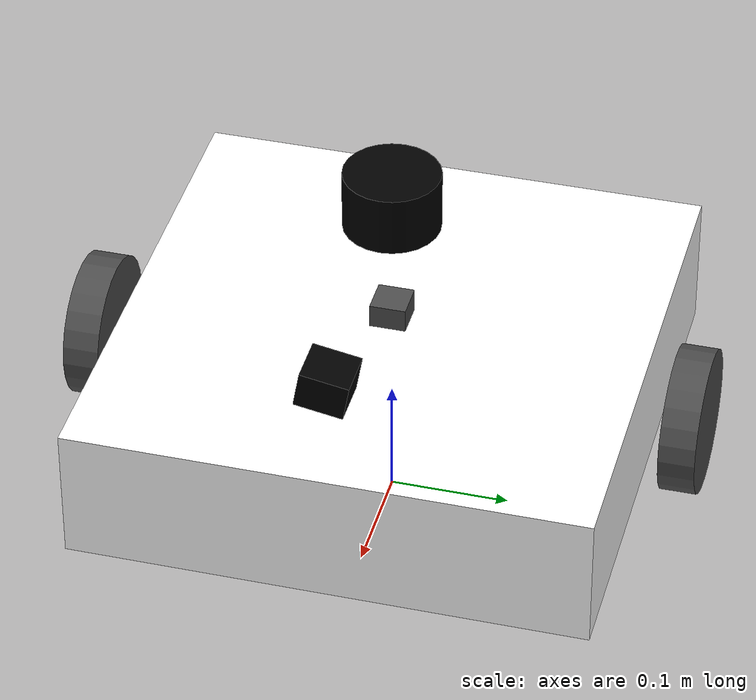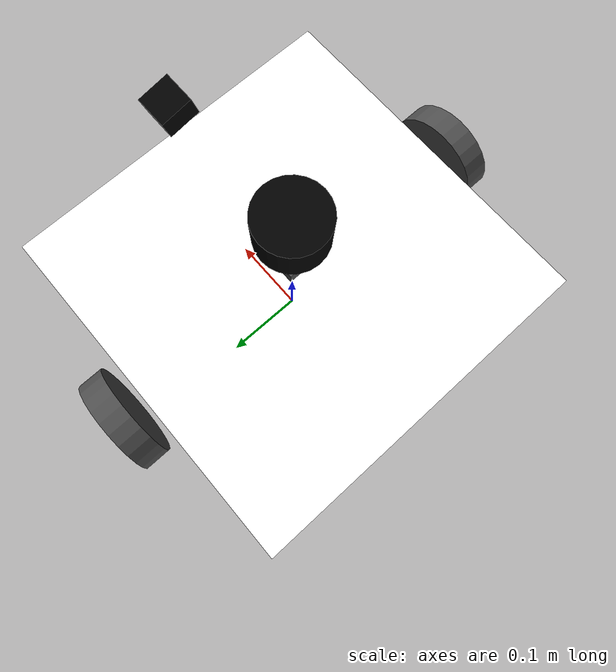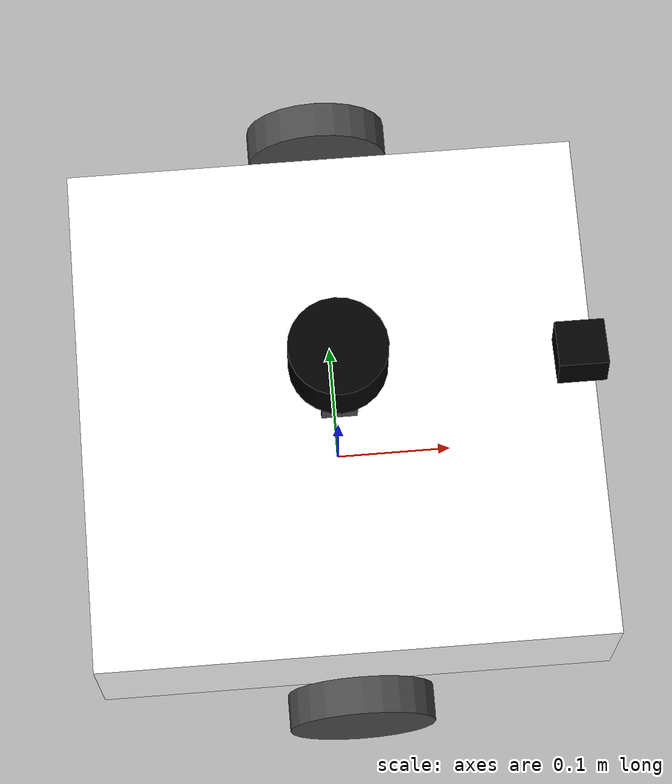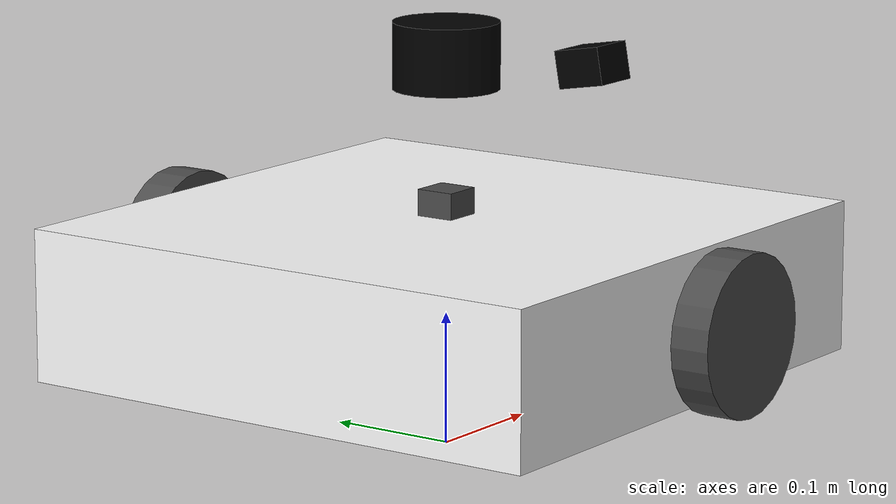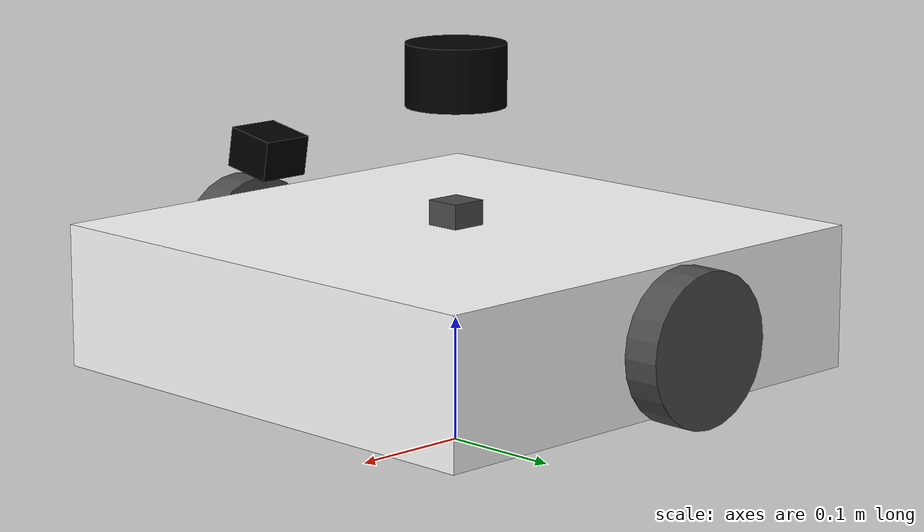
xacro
<?xml version="1.0"?>
<robot name="triangle_bot" xmlns:xacro="http://ros.org/wiki/xacro">

  <!-- ================= PARAMETERS ================= -->
  <xacro:property name="wheel_radius" value="0.06"/>         <!-- 6 cm -->
  <xacro:property name="wheel_separation" value="0.50"/>     <!-- 50 cm -->
  <xacro:property name="base_height" value="0.115"/>         <!-- 11.5 cm -->
  <xacro:property name="body_side" value="0.43"/>            <!-- 43 cm triangle sides -->
  <xacro:property name="lidar_height" value="0.235"/>        <!-- 23.5 cm from ground -->
  <xacro:property name="camera_height" value="0.20"/>        <!-- 20 cm from ground -->
  <xacro:property name="camera_tilt" value="-10"/>           <!-- downward 10 deg -->
<!-- pi constant -->
  <xacro:property name="mass_total" value="4.5"/>
  <xacro:property name="mass_wheel" value="0.25"/>

  <!-- ================= BASE LINK ================= -->
  <link name="base_footprint" />

  <joint name="base_joint" type="fixed">
      <parent link="base_footprint"/>
      <child link="base_link"/>
      <origin xyz="0 0 ${wheel_radius}" rpy="0 0 0" />
  </joint>

  <link name="base_link">
    <visual>
      <geometry>
        <box size="${body_side} ${body_side} ${base_height}"/>
      </geometry>
      <material name="white">
        <color rgba="1 1 1 1"/>
      </material>
      <origin xyz="0 0 ${base_height/2}" rpy="0 0 0"/>
    </visual>

    <collision>
      <geometry>
        <box size="${body_side} ${body_side} ${base_height}"/>
      </geometry>
      <origin xyz="0 0 ${base_height/2}" rpy="0 0 0"/>
    </collision>

    <inertial>
      <mass value="${mass_total - 2*mass_wheel}"/>
      <origin xyz="0 0 ${base_height/2}" rpy="0 0 0"/>
      <inertia
        ixx="0.02" ixy="0.0" ixz="0.0"
        iyy="0.02" iyz="0.0"
        izz="0.03"/>
    </inertial>
  </link>

  <!-- ================= LEFT WHEEL ================= -->
  <link name="left_wheel_link">
    <visual>
      <geometry>
        <cylinder radius="${wheel_radius}" length="0.03"/>
      </geometry>
      <material name="gray">
        <color rgba="0.3 0.3 0.3 1"/>
      </material>
      <!-- FIXED: Origin should be at 0,0,0 since joint handles the transform -->
      <origin xyz="0 0 0" rpy="1.5708 0 0"/>
    </visual>
    <collision>
      <geometry>
        <cylinder radius="${wheel_radius}" length="0.03"/>
      </geometry>
      <!-- FIXED: Origin should be at 0,0,0 since joint handles the transform -->
      <origin xyz="0 0 0" rpy="1.5708 0 0"/>
    </collision>
    <inertial>
      <mass value="${mass_wheel}"/>
      <inertia
        ixx="0.0005" ixy="0" ixz="0"
        iyy="0.0009" iyz="0"
        izz="0.0005"/>
    </inertial>
  </link>

  <joint name="left_wheel_joint" type="continuous">
    <parent link="base_link"/>
    <child link="left_wheel_link"/>
    <origin xyz="0 ${wheel_separation/2} ${wheel_radius}" rpy="0 0 0"/>
    <axis xyz="0 1 0"/>
  </joint>

  <!-- ================= RIGHT WHEEL ================= -->
  <link name="right_wheel_link">
    <visual>
      <geometry>
        <cylinder radius="${wheel_radius}" length="0.03"/>
      </geometry>
      <material name="gray"/>
      <!-- FIXED: Origin should be at 0,0,0 since joint handles the transform -->
      <origin xyz="0 0 0" rpy="1.5708 0 0"/>
    </visual>
    <collision>
      <geometry>
        <cylinder radius="${wheel_radius}" length="0.03"/>
      </geometry>
      <!-- FIXED: Origin should be at 0,0,0 since joint handles the transform -->
      <origin xyz="0 0 0" rpy="1.5708 0 0"/>
    </collision>
    <inertial>
      <mass value="${mass_wheel}"/>
      <inertia
        ixx="0.0005" ixy="0" ixz="0"
        iyy="0.0009" iyz="0"
        izz="0.0005"/>
    </inertial>
  </link>

  <joint name="right_wheel_joint" type="continuous">
    <parent link="base_link"/>
    <child link="right_wheel_link"/>
    <origin xyz="0 -${wheel_separation/2} ${wheel_radius}" rpy="0 0 0"/>
    <axis xyz="0 1 0"/>
  </joint>

  <!-- ================= REAR CASTER WHEEL ================= -->
  <link name="rear_caster_link">
    <visual>
      <geometry>
        <sphere radius="0.03"/>
      </geometry>
      <material name="gray"/>
      <!-- FIXED: Origin should be at 0,0,0 since joint handles the transform -->
      <origin xyz="0 0 0" rpy="0 0 0"/>
    </visual>
    <collision>
      <geometry>
        <sphere radius="0.03"/>
      </geometry>
      <!-- FIXED: Origin should be at 0,0,0 since joint handles the transform -->
      <origin xyz="0 0 0" rpy="0 0 0"/>
    </collision>
  </link>

  <joint name="rear_caster_joint" type="fixed">
    <parent link="base_link"/>
    <child link="rear_caster_link"/>
    <origin xyz="-0.18 0 0.03" rpy="0 0 0"/>
  </joint>

  <!-- ================= LIDAR ================= -->
  <link name="lidar_link">
    <visual>
      <geometry>
        <cylinder radius="0.04" length="0.05"/>
      </geometry>
      <material name="black">
        <color rgba="0 0 0 1"/>
      </material>
      <origin xyz="0 0 0" rpy="0 0 0"/>
    </visual>
  </link>

  <joint name="lidar_joint" type="fixed">
    <parent link="base_link"/>
    <child link="lidar_link"/>
    <origin xyz="0 0 ${lidar_height}" rpy="0 0 0"/>
  </joint>

  <!-- ================= CAMERA ================= -->
  <link name="camera_link">
    <visual>
      <geometry>
        <box size="0.04 0.04 0.03"/>
      </geometry>
      <material name="black"/>
      <origin xyz="0 0 0" rpy="0 0 0"/>
    </visual>
  </link>

  <joint name="camera_joint" type="fixed">
    <parent link="base_link"/>
    <child link="camera_link"/>
    <origin xyz="${body_side/2 - 0.02} 0 ${camera_height}" rpy="${camera_tilt * pi / 180} 0 0"/>
  </joint>

  <!-- ================= IMU ================= -->
  <link name="imu_link">
    <visual>
      <geometry>
        <box size="0.03 0.03 0.02"/>
      </geometry>
      <material name="gray"/>
      <origin xyz="0 0 0" rpy="0 0 0"/>
    </visual>
  </link>

  <joint name="imu_joint" type="fixed">
    <parent link="base_link"/>
    <child link="imu_link"/>
    <origin xyz="0 0 ${base_height + 0.01}" rpy="0 0 0"/>
  </joint>

  <!-- ================= ROS2 CONTROL ================= -->
  <ros2_control name="TriangleBotSystem" type="system">
    <hardware>
      <plugin>diff_drive_controller/DiffDriveController</plugin>
    </hardware>
    <joint name="left_wheel_joint">
      <command_interface name="velocity"/>
      <state_interface name="velocity"/>
      <state_interface name="position"/>
    </joint>
    <joint name="right_wheel_joint">
      <command_interface name="velocity"/>
      <state_interface name="velocity"/>
      <state_interface name="position"/>
    </joint>
  </ros2_control>

</robot>
